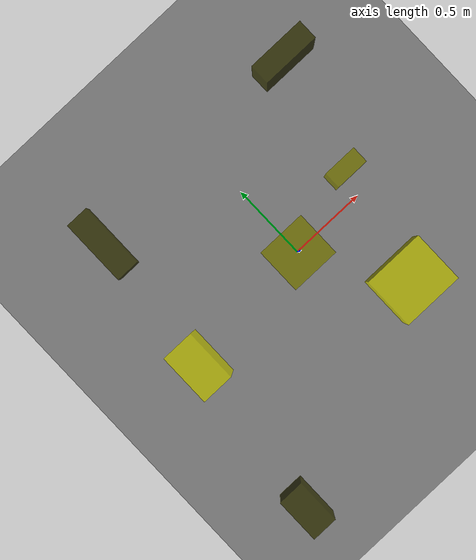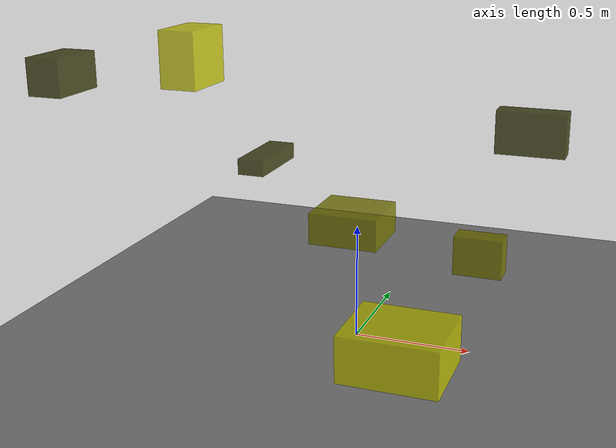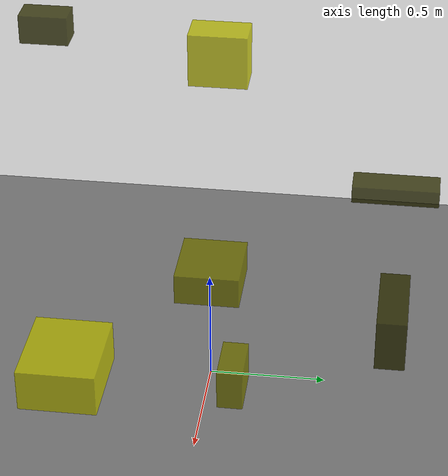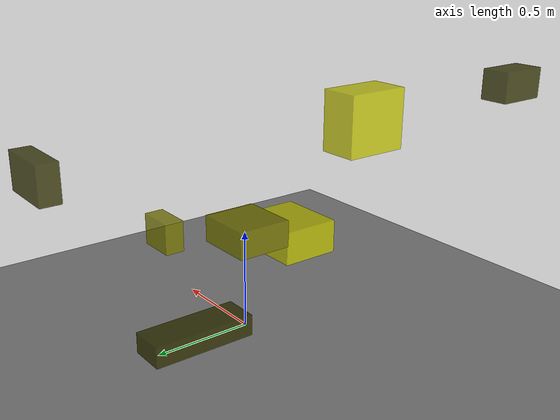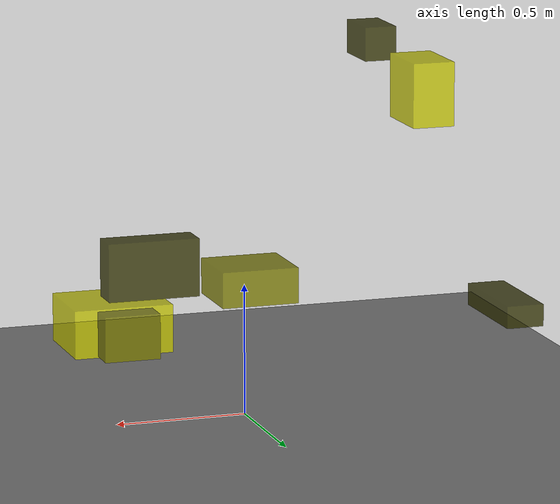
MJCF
<?xml version="1.0"?>
<mujoco model="obstacle_scene">
  <compiler angle="radian" coordinate="local"/>
  <option timestep="0.001" gravity="0 0 -9.81"/>

  <asset>
    <material name="obstacle_mat" rgba="0.8 0.8 0.0 0.8"/>
    <material name="ground_mat" rgba="0.5 0.5 0.5 1"/>
  </asset>

  <worldbody>
    <!-- Ground plane -->
    <geom name="ground" type="plane" size="3 3 0.1" material="ground_mat"/>

    <!-- Obstacles -->
    <body name="obstacle_0" pos="0.596737 0.782488 0.781062">
      <geom name="obs_0" type="box" size="0.164717 0.056906 0.103630" rgba="0.2 0.2 0.0 0.8"/>
    </body>
    <body name="obstacle_1" pos="-0.020647 0.002424 0.516023">
      <geom name="obs_1" type="box" size="0.147538 0.137029 0.067589" rgba="0.5 0.5 0.0 0.8"/>
    </body>
    <body name="obstacle_2" pos="0.355476 -0.560870 0.252643">
      <geom name="obs_2" type="box" size="0.193876 0.165444 0.093586" rgba="0.8 0.8 0.0 0.8"/>
    </body>
    <body name="obstacle_3" pos="-0.753792 0.755121 0.539731">
      <geom name="obs_3" type="box" size="0.068980 0.198846 0.040057" rgba="0.2 0.2 0.0 0.8"/>
    </body>
    <body name="obstacle_4" pos="0.496377 0.161160 0.381248">
      <geom name="obs_4" type="box" size="0.104679 0.051824 0.084760" rgba="0.5 0.5 0.0 0.8"/>
    </body>
    <body name="obstacle_5" pos="-0.722641 -0.051970 1.193563">
      <geom name="obs_5" type="box" size="0.080592 0.131672 0.122386" rgba="0.8 0.8 0.0 0.8"/>
    </body>
    <body name="obstacle_6" pos="-0.801176 -0.846999 1.251174">
      <geom name="obs_6" type="box" size="0.064036 0.109981 0.066524" rgba="0.2 0.2 0.0 0.8"/>
    </body>
  </worldbody>
</mujoco>
